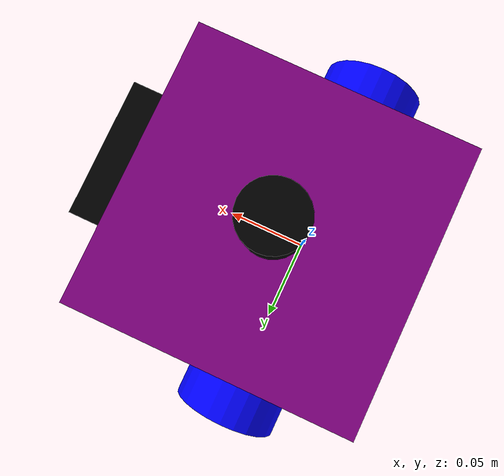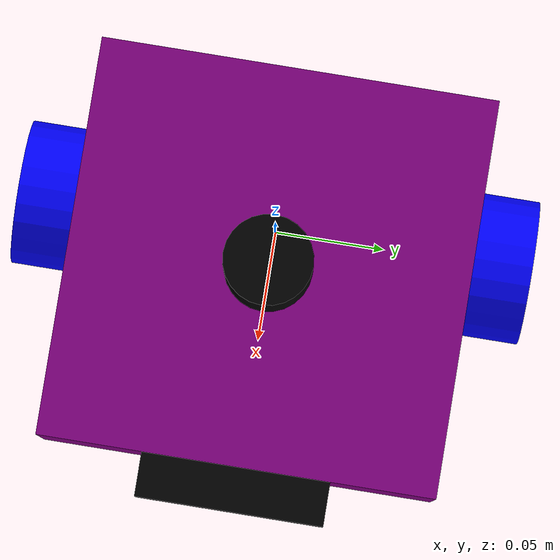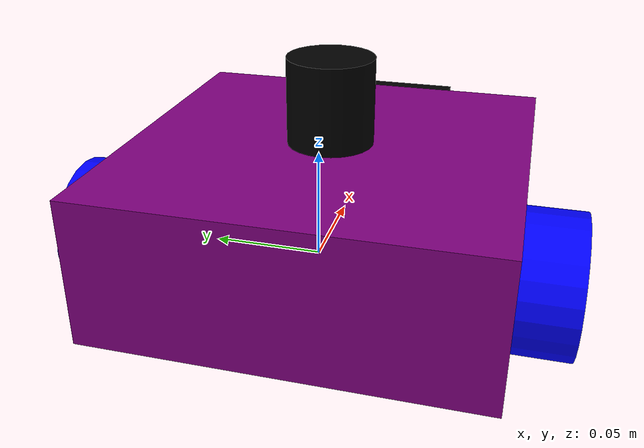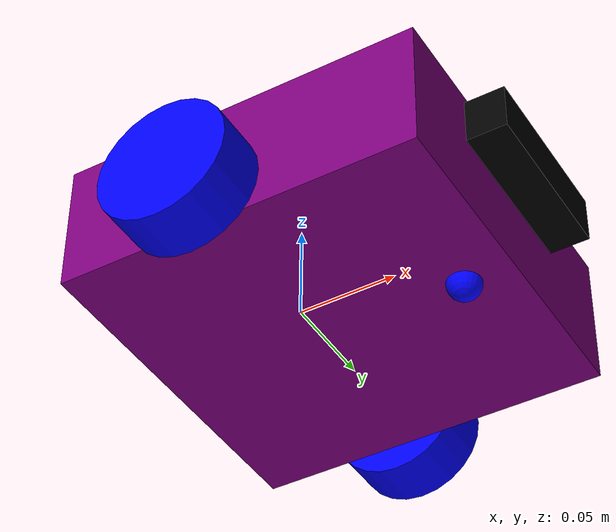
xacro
<?xml version="1.0"?>
<robot xmlns:xacro="http://www.ros.org/wiki/xacro" name="robot">

    <xacro:include filename='robot_base.xacro'></xacro:include>
	<xacro:include filename='ros2_control.xacro'></xacro:include>
    <xacro:include filename='lidar_control.xacro'></xacro:include>
    <xacro:include filename='gz_depth_camera_control.xacro'></xacro:include>

</robot>

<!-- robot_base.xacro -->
<robot xmlns:xacro="http://www.ros.org/wiki/xacro">

    <xacro:include filename='materials.xacro'></xacro:include>
    <xacro:include filename='moi_macros.xacro'></xacro:include>

    <link name='base_link'>
    </link>

    <joint name='chassis_joint' type='fixed'>
        <parent link='base_link'/>
        <child link='chassis'/>
        <origin xyz='0.02 0 0.014'/>
    </joint>

    <link name='chassis'>
        <visual>
            <origin xyz='0 0 0'/>
            <geometry>
                <box size='0.18 0.18 0.068'/>
            </geometry>
            <material name='purple'/>
        </visual>
        <collision>
            <origin xyz='0 0 0'/>
            <geometry>
                <box size='0.18 0.18 0.068'/>
            </geometry>
        </collision>
        <xacro:cuboid_moi mass='1.0635' l='0.18' b='0.18' h='0.068'>
            <origin xyz='0 0 0' rpy='0 0 0'/>
        </xacro:cuboid_moi>
    </link>

    <joint name='left_wheel_joint' type='continuous'>
        <parent link='base_link'/>
        <child link='left_wheel'/>
        <origin xyz='0 0.09 0' rpy='-${pi/2} 0 0'/>
        <axis xyz='0 0 1'/>
    </joint>

    <link name='left_wheel'>
        <visual>
            <origin xyz='0 0 0.0135'/>
            <geometry>
                <cylinder radius='0.033' length='0.027'/>
            </geometry>
            <material name='blue'/>
        </visual>
        <collision>
			<origin xyz='0 0 0.0135'/>
            <geometry>
                <cylinder radius='0.033' length='0.027'/>
            </geometry>
        </collision>
        <xacro:cylinder_moi mass='0.033' r='0.033' l='0.027'>
            <origin xyz='0 0 0.0135' rpy='0 0 0'/>
        </xacro:cylinder_moi>
    </link>

    <joint name='right_wheel_joint' type='continuous'>
        <parent link='base_link'/>
        <child link='right_wheel'/>
        <origin xyz='0 -0.09 0' rpy='${pi/2} 0 0'/>
        <axis xyz='0 0 -1'/>
    </joint>

    <link name='right_wheel'>
        <visual>
            <origin xyz='0 0 0.0135'/>
            <geometry>
                <cylinder radius='0.033' length='0.027'/>
            </geometry>
            <material name='blue'/>
        </visual>
        <collision>
			<origin xyz='0 0 0.0135'/>
            <geometry>
                <cylinder radius='0.033' length='0.027'/>
            </geometry>
        </collision>
        <xacro:cylinder_moi mass='0.033' r='0.033' l='0.027'>
            <origin xyz='0 0 0.0135' rpy='0 0 0'/>
        </xacro:cylinder_moi>
    </link>

    <joint name='caster_wheel_joint' type='fixed'>
        <parent link='base_link'/>
        <child link='caster_wheel'/>
        <origin xyz='0.085 0 -0.02'/>
    </joint>

    <link name='caster_wheel'>
        <visual>
            <origin xyz='0 0 0'/>
            <geometry>
                <sphere radius='0.0085'/>
            </geometry>
            <material name='blue'/>
        </visual>
        <collision>
            <geometry>
                <sphere radius='0.0085'/>
            </geometry>
        </collision>
        <xacro:sphere_moi mass='0.043' r='0.0085'>
            <origin xyz='0 0 0' rpy='0 0 0'/>
        </xacro:sphere_moi>
    </link>

    <gazebo reference='caster_wheel'>
        <mu1 value='0.000001'/>
        <mu2 value='0.000001'/>
    </gazebo>

</robot>

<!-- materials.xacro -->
<robot xmlns:xacro="http://www.ros.org/wiki/xacro">

    <material name='black'>
        <color rgba='0 0 0 1'/>
    </material>

    <material name='grey'>
        <color rgba='0.5 0.5 0.5 0.5'/>
    </material>

    <material name='white'>
        <color rgba='1 1 1 1'/>
    </material>

    <material name='red'>
        <color rgba='1 0 0 1'/>
    </material>

    <material name='blue'>
        <color rgba='0 0 1 1'/>
    </material>

	<material name='purple'>
        <color rgba='0.5 0 0.5 1'/>
    </material>

</robot>

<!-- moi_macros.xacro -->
<robot xmlns:xacro="http://www.ros.org/wiki/xacro" >

    <!-- Formulas from https://en.wikipedia.org/wiki/List_of_moments_of_inertia -->

    <xacro:macro name="sphere_moi" params="mass r *origin">
        <inertial>
            <xacro:insert_block name="origin"/>
            <mass value="${mass}" />
            <inertia ixx="${(2/5) * mass * (r*r)}" ixy="0.0" ixz="0.0"
                    iyy="${(2/5) * mass * (r*r)}" iyz="0.0"
                    izz="${(2/5) * mass * (r*r)}" />
        </inertial>
    </xacro:macro>

    <xacro:macro name="cuboid_moi" params="mass l b h *origin">
        <inertial>
            <xacro:insert_block name="origin"/>
            <mass value="${mass}" />
            <inertia ixx="${(1/12) * mass * (b*b+h*h)}" ixy="0.0" ixz="0.0"
                    iyy="${(1/12) * mass * (l*l+h*h)}" iyz="0.0"
                    izz="${(1/12) * mass * (l*l+b*b)}" />
        </inertial>
    </xacro:macro>

    <xacro:macro name="cylinder_moi" params="mass l r *origin">
        <inertial>
            <xacro:insert_block name="origin"/>
            <mass value="${mass}" />
            <inertia ixx="${(1/12) * mass * (3*r*r + l*l)}" ixy="0.0" ixz="0.0"
                    iyy="${(1/12) * mass * (3*r*r + l*l)}" iyz="0.0"
                    izz="${(1/2) * mass * (r*r)}" />
        </inertial>
    </xacro:macro>

</robot>

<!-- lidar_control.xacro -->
<robot xmlns:xacro="http://www.ros.org/wiki/xacro">

    <joint name="lidar_joint" type="fixed">
        <parent link="chassis"/>
        <child link="lidar_link"/>
        <origin xyz="0 0 0.054" rpy="0 0 0"/>
    </joint>

    <link name="lidar_link">
        <visual>
            <origin xyz='0 0 0'/>
            <geometry>
                <cylinder radius='0.02' length='0.04'/>
            </geometry>
            <material name='black'/>
        </visual>
        <collision>
            <geometry>
                <cylinder radius='0.02' length='0.04'/>
            </geometry>
        </collision>
        <xacro:cylinder_moi mass='0.045' r='0.02' l='0.04'>
            <origin xyz='0 0 0' rpy='0 0 0'/>
        </xacro:cylinder_moi>
    </link>

    <gazebo>
        <plugin name="gz::sim::systems::Sensors" filename="gz-sim-sensors-system">
        </plugin>
    </gazebo>

    <gazebo reference="lidar_link">
        <sensor name="lidar_link" type="gpu_lidar">
            <pose relative_to="lidar_link"> 0 0 0 0 0 0 </pose>
            <topic>scan</topic>
            <gz_frame_id>lidar_link</gz_frame_id>
            <frame_name>lidar_link</frame_name>
            <visualize>true</visualize>
            <always_on>1</always_on>
            <update_rate>10</update_rate>
            <lidar>
                <scan>
                    <horizontal>
                        <samples>360</samples>
                        <resolution>1</resolution>
                        <min_angle>-3.14</min_angle>
                        <max_angle>3.14</max_angle>
                    </horizontal>
                </scan>
                <range>
                    <resolution>0.01</resolution>
                    <min>0.3</min>
                    <max>12</max>
                </range>
            </lidar>
        </sensor>
    </gazebo>

</robot>

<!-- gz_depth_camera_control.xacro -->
<robot xmlns:xacro="http://www.ros.org/wiki/xacro">

    <joint name="camera_joint" type="fixed">
        <parent link="chassis"/>
        <child link="camera_link"/>
        <origin xyz="0.1 0 0.018" rpy="0 0 0"/>
    </joint>

    <link name="camera_link">
        <visual>
            <origin xyz='0 0 0'/>
            <geometry>
                <box size='0.02 0.085 0.024'/>
            </geometry>
            <material name='black'/>
        </visual>
        <collision>
            <geometry>
                <box size='0.02 0.085 0.024'/>
            </geometry>
        </collision>
        <xacro:cuboid_moi mass='0.023' l='0.02' b='0.085' h='0.024'>
            <origin xyz='0 0 0' rpy='0 0 0'/>
        </xacro:cuboid_moi>7
    </link>

    <joint name="optical_joint" type="fixed">
        <parent link="camera_link"/>
        <child link="optical_link"/>
        <origin xyz="0 0 0" rpy="0 0 0"/>
         <!-- KD-24/08/25 - Did this fix it? -->
    </joint>

    <link name="optical_link"></link>

    <gazebo reference="camera_link">
        <sensor name="camera_link" type="depth_camera">
            <pose relative_to="camera_link"> 0 0 0 0 0 0 </pose>
            <topic>camera/depth/image_raw</topic>
            <gz_frame_id>optical_link</gz_frame_id>
            <visualize>true</visualize>
            <always_on>1</always_on>
            <update_rate>10</update_rate>
            <camera>
                <camera_info_topic>camera/depth/camera_info</camera_info_topic>
                <horizontal_fov>1.05</horizontal_fov>
                <image>
                    <format>R8G8B8</format>
                    <width>640</width>
                    <height>480</height>
                    <!-- KD: 24/08/25 - Or did this fix it? -->
                </image>
                <clip>
                    <near>0.05</near>
                    <far>8.0</far>
                </clip>
            </camera>
        </sensor>
    </gazebo>

</robot>
